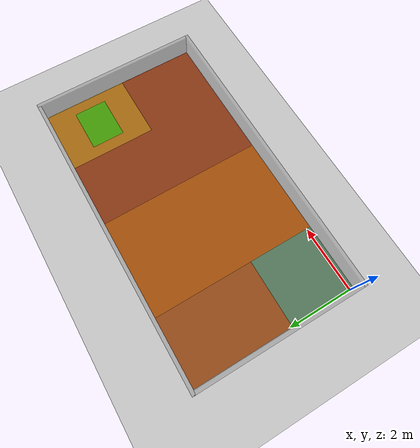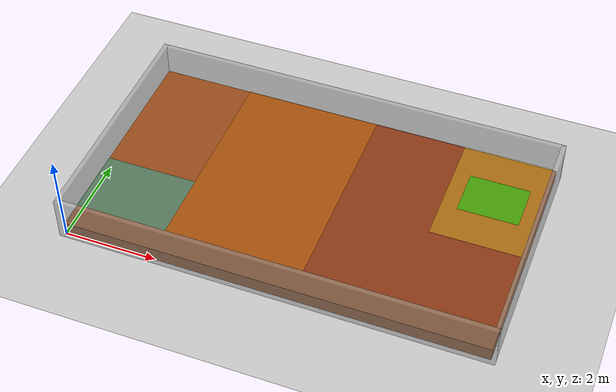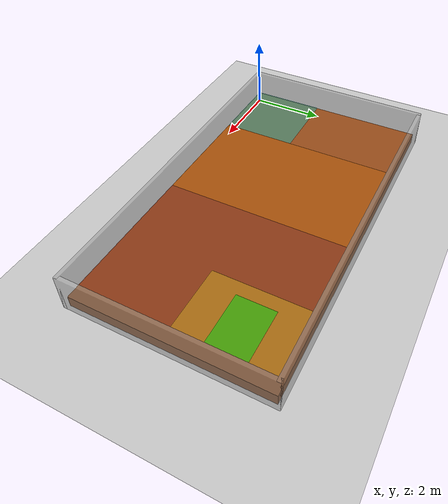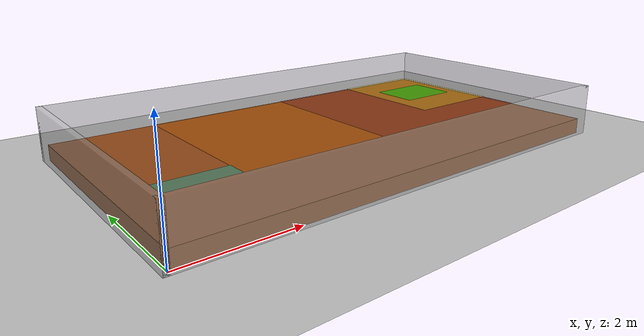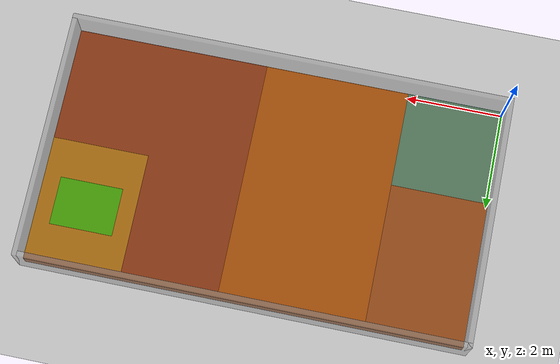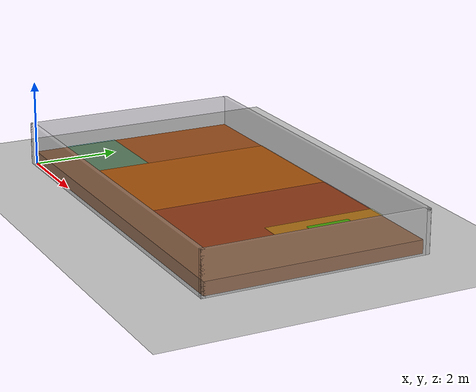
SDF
<?xml version="1.0" ?>
<sdf version="1.6">
  <world name="shaastra_arena">

    <scene>
      <ambient>0.6 0.6 0.6 1</ambient>
      <background>0.8 0.8 0.9 1</background>
      <shadows>false</shadows>
    </scene>

    <light name="sun_light" type="directional">
      <cast_shadows>true</cast_shadows>
      <pose>0 0 10 0 0 0</pose>
      <diffuse>1 1 1 1</diffuse>
      <specular>0.3 0.3 0.3 1</specular>
      <attenuation>
        <range>1000</range>
        <constant>0.9</constant>
        <linear>0.01</linear>
        <quadratic>0.001</quadratic>
      </attenuation>
      <direction>-0.5 0.1 -1</direction>
    </light>

    <include>
      <uri>model://ground_plane</uri>
    </include>

    <model name="arena_floor">
      <static>true</static>
      <pose>4.5 2.5 0.15 0 0 0</pose>
      <link name="link">
        <visual name="vis">
          <geometry>
            <box>
              <size>9.0 5.0 0.3</size>
            </box>
          </geometry>
          <material>
            <ambient>0.6 0.3 0.1 1</ambient>
            <diffuse>0.6 0.3 0.1 1</diffuse>
          </material>
        </visual>
        <collision name="col">
          <geometry>
            <box>
              <size>9.0 5.0 0.3</size>
            </box>
          </geometry>
        </collision>
      </link>
    </model>

    <model name="zone_start">
      <static>true</static>
      <pose>1.0 1.0 0.31 0 0 0</pose>
      <link name="link">
        <visual name="vis">
          <geometry>
            <box>
              <size>2.0 2.0 0.01</size>
            </box>
          </geometry>
          <material>
            <ambient>0.0 0.8 0.8 1</ambient>
            <diffuse>0.0 0.8 0.8 1</diffuse>
          </material>
          <transparency>0.6</transparency>
        </visual>
      </link>
    </model>

    <model name="zone_obstacle">
      <static>true</static>
      <pose>4.5 2.5 0.305 0 0 0</pose>
      <link name="link">
        <visual name="vis">
          <geometry>
            <box>
              <size>5.0 5.0 0.01</size>
            </box>
          </geometry>
          <material>
            <ambient>0.8 0.4 0.0 1</ambient>
            <diffuse>0.8 0.4 0.0 1</diffuse>
          </material>
          <transparency>0.6</transparency>
        </visual>
      </link>
    </model>

    <model name="zone_excavation">
      <static>true</static>
      <pose>7.0 2.5 0.31 0 0 0</pose>
      <link name="link">
        <visual name="vis">
          <geometry>
            <box>
              <size>4.0 5.0 0.01</size>
            </box>
          </geometry>
          <material>
            <ambient>0.5 0.1 0.1 1</ambient>
            <diffuse>0.5 0.1 0.1 1</diffuse>
          </material>
          <transparency>0.7</transparency>
        </visual>
      </link>
    </model>
    <model name="zone_construction">
      <static>true</static>
      <pose>8.0 3.7 0.32 0 0 0</pose>
      <link name="link">
        <visual name="vis">
          <geometry>
            <box>
              <size>2.0 2.6 0.01</size>
            </box>
          </geometry>
          <material>
            <ambient>1.0 1.0 0.0 1</ambient>
            <diffuse>1.0 1.0 0.0 1</diffuse>
          </material>
          <transparency>0.8</transparency>
        </visual>
      </link>
    </model>

    <model name="zone_berm">
      <static>true</static>
      <pose>8.0 3.7 0.33 0 0 0</pose>
      <link name="link">
        <visual name="vis">
          <geometry>
            <box>
              <size>1.3 1.0 0.01</size>
            </box>
          </geometry>
          <material>
            <ambient>0.0 1.0 0.0 1</ambient>
            <diffuse>0.0 1.0 0.0 1</diffuse>
            <emissive>0 1 0 1</emissive>
          </material>
          <transparency>0.5</transparency>
        </visual>
      </link>
    </model>

    <model name="arena_walls">
      <static>true</static>
      <pose>4.5 2.5 0.5 0 0 0</pose>
      <link name="walls_link">

        <visual name="wall_top">
          <pose>0 2.55 0 0 0 0</pose>
          <geometry>
            <box>
              <size>9.2 0.1 1.0</size>
            </box>
          </geometry>
          <material>
            <script>
              <uri>file://media/materials/scripts/gazebo.material</uri>
              <name>Gazebo/GreyTransparent</name>
            </script>
          </material>
        </visual>
        <collision name="wall_top_c">
          <pose>0 2.55 0 0 0 0</pose>
          <geometry>
            <box>
              <size>9.2 0.1 1.0</size>
            </box>
          </geometry>
        </collision>

        <visual name="wall_btm">
          <pose>0 -2.55 0 0 0 0</pose>
          <geometry>
            <box>
              <size>9.2 0.1 1.0</size>
            </box>
          </geometry>
          <material>
            <script>
              <uri>file://media/materials/scripts/gazebo.material</uri>
              <name>Gazebo/GreyTransparent</name>
            </script>
          </material>
        </visual>
        <collision name="wall_btm_c">
          <pose>0 -2.55 0 0 0 0</pose>
          <geometry>
            <box>
              <size>9.2 0.1 1.0</size>
            </box>
          </geometry>
        </collision>

        <visual name="wall_left">
          <pose>-4.55 0 0 0 0 0</pose>
          <geometry>
            <box>
              <size>0.1 5.2 1.0</size>
            </box>
          </geometry>
          <material>
            <script>
              <uri>file://media/materials/scripts/gazebo.material</uri>
              <name>Gazebo/GreyTransparent</name>
            </script>
          </material>
        </visual>
        <collision name="wall_left_c">
          <pose>-4.55 0 0 0 0 0</pose>
          <geometry>
            <box>
              <size>0.1 5.2 1.0</size>
            </box>
          </geometry>
        </collision>

        <visual name="wall_right">
          <pose>4.55 0 0 0 0 0</pose>
          <geometry>
            <box>
              <size>0.1 5.2 1.0</size>
            </box>
          </geometry>
          <material>
            <script>
              <uri>file://media/materials/scripts/gazebo.material</uri>
              <name>Gazebo/GreyTransparent</name>
            </script>
          </material>
        </visual>
        <collision name="wall_right_c">
          <pose>4.55 0 0 0 0 0</pose>
          <geometry>
            <box>
              <size>0.1 5.2 1.0</size>
            </box>
          </geometry>
        </collision>
      </link>
    </model>

  </world>
</sdf>
